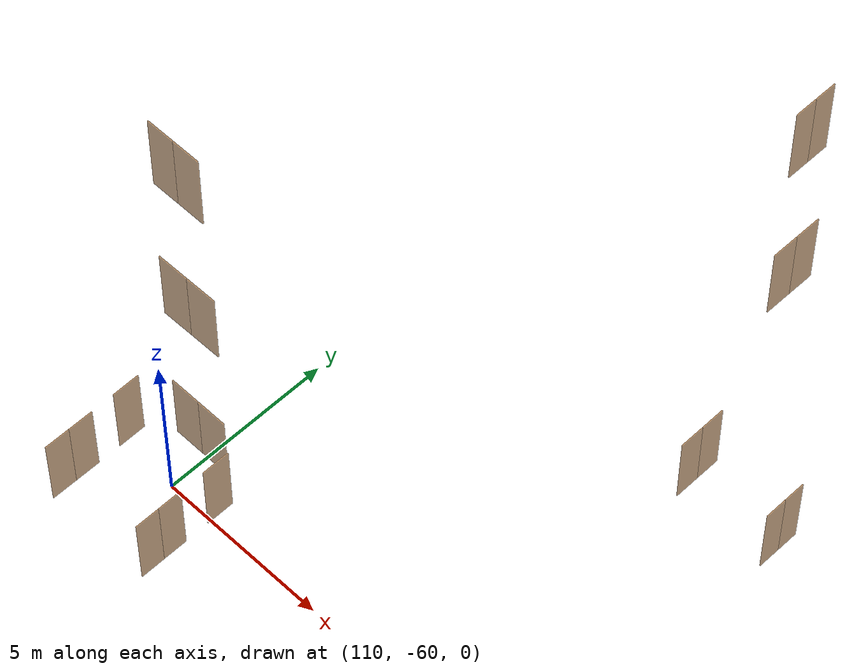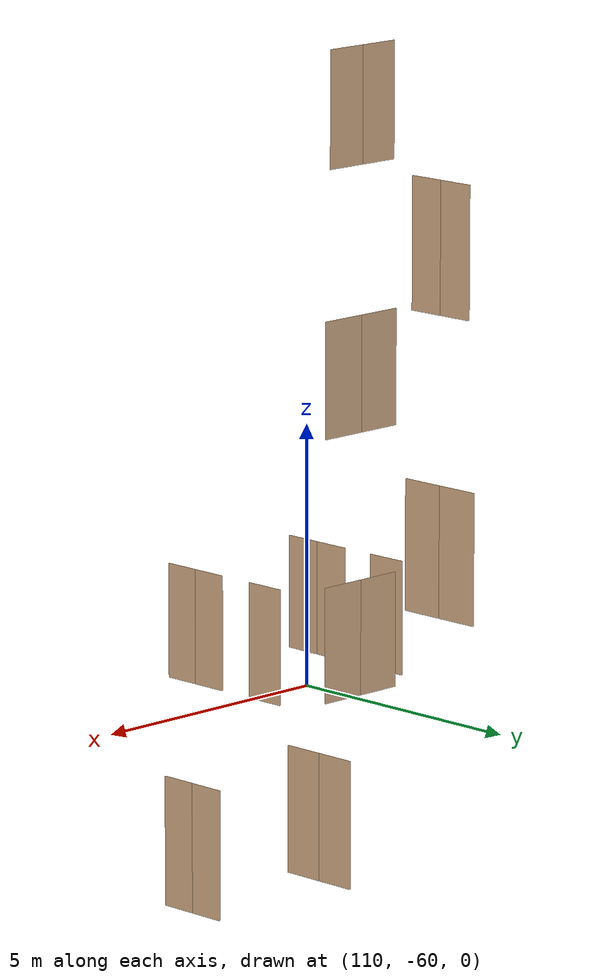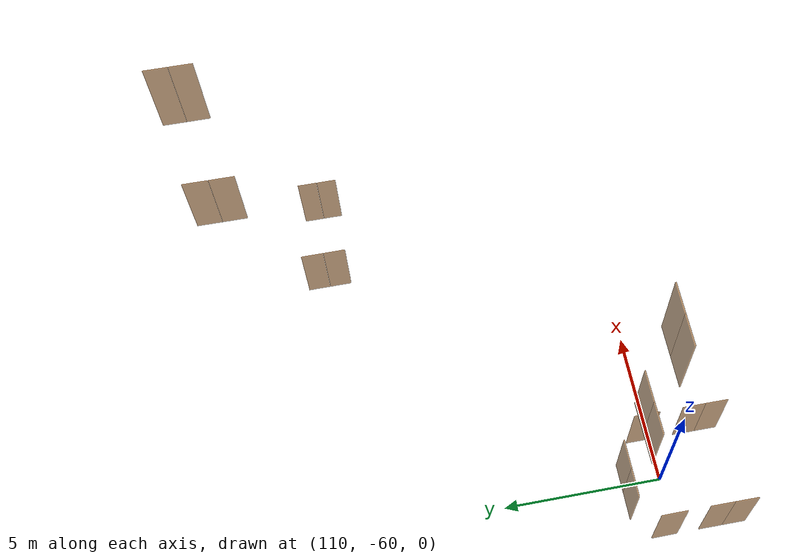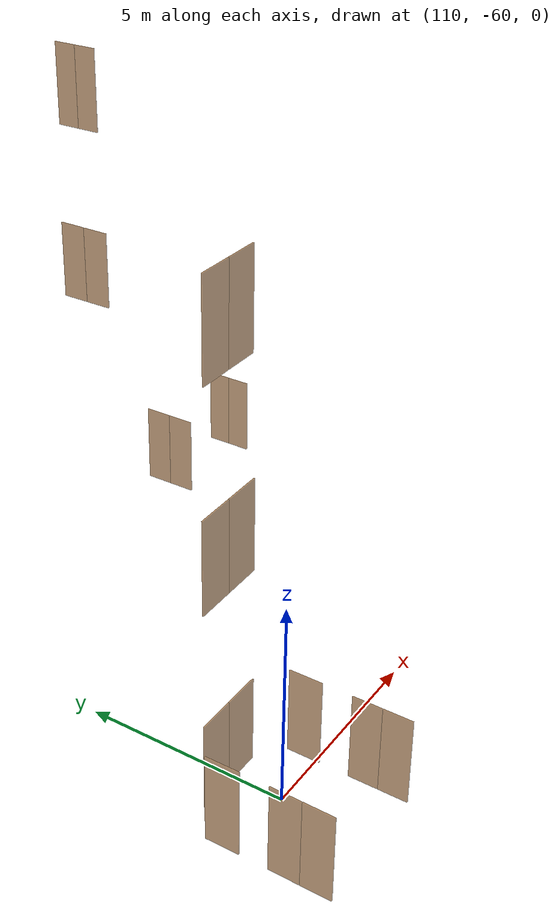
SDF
<sdf version="1.7">
 <world name="sim_world">
  <model name="p156">
   <pose>108.20558279754681 -61.52029939853638 0.0 0 0 -1.5757486219376704</pose>
   <link name="right">
    <pose>0.3735546237083344 0 1.11 0 0 0</pose>
    <visual name="right_visual">
     <geometry><box><size>0.7371092474166688 0.03 2.2</size></box></geometry>
     <material>
      <ambient>0.5 0.25 0 0.6</ambient>
      <diffuse>0.5 0.25 0 0.6</diffuse>
      <pbr><metal><metalness>0.0</metalness></metal></pbr>
     </material>
    </visual>
    <collision name="right_collision">
     <geometry><box><size>0.7371092474166688 0.03 2.2</size></box></geometry>
     <surface><contact><collide_bitmask>0x02</collide_bitmask></contact></surface>
    </collision>
    <inertial>
     <mass>50.0</mass>
     <inertia><ixx>20.17041666666667</ixx><iyy>22.43054184427987</iyy><izz>2.2676251776132</izz></inertia>
    </inertial>
   </link>
   <joint name="right_joint" type="revolute">
    <parent>world</parent>
    <child>right</child>
    <axis><xyz>0 0 -1</xyz><limit><lower>0</lower><upper>1.57</upper></limit></axis>
    <pose>0.3735546237083344 0 0 0 0 0</pose>
   </joint>
   <link name="left">
    <pose>-0.3735546237083344 0 1.11 0 0 0</pose>
    <visual name="left_visual">
     <geometry><box><size>0.7371092474166688 0.03 2.2</size></box></geometry>
     <material>
      <ambient>0.5 0.25 0 0.6</ambient>
      <diffuse>0.5 0.25 0 0.6</diffuse>
      <pbr><metal><metalness>0.0</metalness></metal></pbr>
     </material>
    </visual>
    <collision name="left_collision">
     <geometry><box><size>0.7371092474166688 0.03 2.2</size></box></geometry>
     <surface><contact><collide_bitmask>0x02</collide_bitmask></contact></surface>
    </collision>
    <inertial>
     <mass>50.0</mass>
     <inertia><ixx>20.17041666666667</ixx><iyy>22.43054184427987</iyy><izz>2.2676251776132</izz></inertia>
    </inertial>
   </link>
   <joint name="left_joint" type="revolute">
    <parent>world</parent>
    <child>left</child>
    <axis><xyz>0 0 -1</xyz><limit><lower>-1.57</lower><upper>0</upper></limit></axis>
    <pose>-0.3735546237083344 0 0 0 0 0</pose>
   </joint>
   <plugin name="register_component" filename="libregister_component.so">
    <component name="Door">
     <v_max_door>0.5</v_max_door>
     <a_max_door>0.3</a_max_door>
     <a_nom_door>0.15</a_nom_door>
     <dx_min_door>0.01</dx_min_door>
     <f_max_door>500.0</f_max_door>
     <ros_interface>true</ros_interface>
     <door name="p156" type="DoubleSwingDoor" left_joint_name="left_joint" right_joint_name="right_joint"/>
    </component>
   </plugin>
  </model>
  <model name="p157">
   <pose>111.40186587064095 -61.52849915558062 0.0 0 0 1.5697316602527767</pose>
   <link name="right">
    <pose>0.36003953622299495 0 1.11 0 0 0</pose>
    <visual name="right_visual">
     <geometry><box><size>0.7100790724459899 0.03 2.2</size></box></geometry>
     <material>
      <ambient>0.5 0.25 0 0.6</ambient>
      <diffuse>0.5 0.25 0 0.6</diffuse>
      <pbr><metal><metalness>0.0</metalness></metal></pbr>
     </material>
    </visual>
    <collision name="right_collision">
     <geometry><box><size>0.7100790724459899 0.03 2.2</size></box></geometry>
     <surface><contact><collide_bitmask>0x02</collide_bitmask></contact></surface>
    </collision>
    <inertial>
     <mass>50.0</mass>
     <inertia><ixx>20.17041666666667</ixx><iyy>22.26755120469066</iyy><izz>2.1046345380239893</izz></inertia>
    </inertial>
   </link>
   <joint name="right_joint" type="revolute">
    <parent>world</parent>
    <child>right</child>
    <axis><xyz>0 0 -1</xyz><limit><lower>0</lower><upper>1.57</upper></limit></axis>
    <pose>0.36003953622299495 0 0 0 0 0</pose>
   </joint>
   <link name="left">
    <pose>-0.36003953622299495 0 1.11 0 0 0</pose>
    <visual name="left_visual">
     <geometry><box><size>0.7100790724459899 0.03 2.2</size></box></geometry>
     <material>
      <ambient>0.5 0.25 0 0.6</ambient>
      <diffuse>0.5 0.25 0 0.6</diffuse>
      <pbr><metal><metalness>0.0</metalness></metal></pbr>
     </material>
    </visual>
    <collision name="left_collision">
     <geometry><box><size>0.7100790724459899 0.03 2.2</size></box></geometry>
     <surface><contact><collide_bitmask>0x02</collide_bitmask></contact></surface>
    </collision>
    <inertial>
     <mass>50.0</mass>
     <inertia><ixx>20.17041666666667</ixx><iyy>22.26755120469066</iyy><izz>2.1046345380239893</izz></inertia>
    </inertial>
   </link>
   <joint name="left_joint" type="revolute">
    <parent>world</parent>
    <child>left</child>
    <axis><xyz>0 0 -1</xyz><limit><lower>-1.57</lower><upper>0</upper></limit></axis>
    <pose>-0.36003953622299495 0 0 0 0 0</pose>
   </joint>
   <plugin name="register_component" filename="libregister_component.so">
    <component name="Door">
     <v_max_door>0.5</v_max_door>
     <a_max_door>0.3</a_max_door>
     <a_nom_door>0.15</a_nom_door>
     <dx_min_door>0.01</dx_min_door>
     <f_max_door>500.0</f_max_door>
     <ros_interface>true</ros_interface>
     <door name="p157" type="DoubleSwingDoor" left_joint_name="left_joint" right_joint_name="right_joint"/>
    </component>
   </plugin>
  </model>
  <model name="p158">
   <pose>111.4024991852094 -59.68242052087349 0.0 0 0 -1.5704728853895176</pose>
   <link name="right">
    <pose>0 0 1.11 0 0 0</pose>
    <visual name="right_visual">
     <geometry><box><size>0.814442281872725 0.03 2.2</size></box></geometry>
     <material>
      <ambient>0.5 0.25 0 0.6</ambient>
      <diffuse>0.5 0.25 0 0.6</diffuse>
      <pbr><metal><metalness>0.0</metalness></metal></pbr>
     </material>
    </visual>
    <collision name="right_collision">
     <geometry><box><size>0.814442281872725 0.03 2.2</size></box></geometry>
     <surface><contact><collide_bitmask>0x02</collide_bitmask></contact></surface>
    </collision>
    <inertial>
     <mass>50.0</mass>
     <inertia><ixx>20.17041666666667</ixx><iyy>22.930484293758553</iyy><izz>2.7675676270918808</izz></inertia>
    </inertial>
   </link>
   <joint name="right_joint" type="revolute">
    <parent>world</parent>
    <child>right</child>
    <axis><xyz>0 0 1</xyz><limit><lower>0</lower><upper>1.57</upper></limit></axis>
    <pose>0.41222114093636253 0 0 0 0 0</pose>
   </joint>
   <plugin name="register_component" filename="libregister_component.so">
    <component name="Door">
     <v_max_door>0.5</v_max_door>
     <a_max_door>0.3</a_max_door>
     <a_nom_door>0.15</a_nom_door>
     <dx_min_door>0.01</dx_min_door>
     <f_max_door>500.0</f_max_door>
     <ros_interface>true</ros_interface>
     <door name="p158" type="SwingDoor" left_joint_name="empty_joint" right_joint_name="right_joint"/>
    </component>
   </plugin>
  </model>
  <model name="p159">
   <pose>108.20648277088094 -59.67844286095231 0.0 0 0 -1.5640041614955043</pose>
   <link name="right">
    <pose>0 0 1.11 0 0 0</pose>
    <visual name="right_visual">
     <geometry><box><size>0.8144612563209438 0.03 2.2</size></box></geometry>
     <material>
      <ambient>0.5 0.25 0 0.6</ambient>
      <diffuse>0.5 0.25 0 0.6</diffuse>
      <pbr><metal><metalness>0.0</metalness></metal></pbr>
     </material>
    </visual>
    <collision name="right_collision">
     <geometry><box><size>0.8144612563209438 0.03 2.2</size></box></geometry>
     <surface><contact><collide_bitmask>0x02</collide_bitmask></contact></surface>
    </collision>
    <inertial>
     <mass>50.0</mass>
     <inertia><ixx>20.17041666666667</ixx><iyy>22.93061307519955</iyy><izz>2.767696408532876</izz></inertia>
    </inertial>
   </link>
   <joint name="right_joint" type="revolute">
    <parent>world</parent>
    <child>right</child>
    <axis><xyz>0 0 -1</xyz><limit><lower>0</lower><upper>1.57</upper></limit></axis>
    <pose>0.4122306281604719 0 0 0 0 0</pose>
   </joint>
   <plugin name="register_component" filename="libregister_component.so">
    <component name="Door">
     <v_max_door>0.5</v_max_door>
     <a_max_door>0.3</a_max_door>
     <a_nom_door>0.15</a_nom_door>
     <dx_min_door>0.01</dx_min_door>
     <f_max_door>500.0</f_max_door>
     <ros_interface>true</ros_interface>
     <door name="p159" type="SwingDoor" left_joint_name="empty_joint" right_joint_name="right_joint"/>
    </component>
   </plugin>
  </model>
  <model name="p160">
   <pose>109.81110189327731 -58.77832508666414 0.0 0 0 -0.0021304894530030185</pose>
   <link name="right">
    <pose>0.458931888035589 0 1.11 0 0 0</pose>
    <visual name="right_visual">
     <geometry><box><size>0.907863776071178 0.03 2.2</size></box></geometry>
     <material>
      <ambient>0.5 0.25 0 0.6</ambient>
      <diffuse>0.5 0.25 0 0.6</diffuse>
      <pbr><metal><metalness>0.0</metalness></metal></pbr>
     </material>
    </visual>
    <collision name="right_collision">
     <geometry><box><size>0.907863776071178 0.03 2.2</size></box></geometry>
     <surface><contact><collide_bitmask>0x02</collide_bitmask></contact></surface>
    </collision>
    <inertial>
     <mass>50.0</mass>
     <inertia><ixx>20.17041666666667</ixx><iyy>23.60090264959258</iyy><izz>3.4379859829259085</izz></inertia>
    </inertial>
   </link>
   <joint name="right_joint" type="revolute">
    <parent>world</parent>
    <child>right</child>
    <axis><xyz>0 0 -1</xyz><limit><lower>0</lower><upper>1.57</upper></limit></axis>
    <pose>0.458931888035589 0 0 0 0 0</pose>
   </joint>
   <link name="left">
    <pose>-0.458931888035589 0 1.11 0 0 0</pose>
    <visual name="left_visual">
     <geometry><box><size>0.907863776071178 0.03 2.2</size></box></geometry>
     <material>
      <ambient>0.5 0.25 0 0.6</ambient>
      <diffuse>0.5 0.25 0 0.6</diffuse>
      <pbr><metal><metalness>0.0</metalness></metal></pbr>
     </material>
    </visual>
    <collision name="left_collision">
     <geometry><box><size>0.907863776071178 0.03 2.2</size></box></geometry>
     <surface><contact><collide_bitmask>0x02</collide_bitmask></contact></surface>
    </collision>
    <inertial>
     <mass>50.0</mass>
     <inertia><ixx>20.17041666666667</ixx><iyy>23.60090264959258</iyy><izz>3.4379859829259085</izz></inertia>
    </inertial>
   </link>
   <joint name="left_joint" type="revolute">
    <parent>world</parent>
    <child>left</child>
    <axis><xyz>0 0 -1</xyz><limit><lower>-1.57</lower><upper>0</upper></limit></axis>
    <pose>-0.458931888035589 0 0 0 0 0</pose>
   </joint>
   <plugin name="register_component" filename="libregister_component.so">
    <component name="Door">
     <v_max_door>0.5</v_max_door>
     <a_max_door>0.3</a_max_door>
     <a_nom_door>0.15</a_nom_door>
     <dx_min_door>0.01</dx_min_door>
     <f_max_door>500.0</f_max_door>
     <ros_interface>true</ros_interface>
     <door name="p160" type="DoubleSwingDoor" left_joint_name="left_joint" right_joint_name="right_joint"/>
    </component>
   </plugin>
  </model>
  <model name="p165">
   <pose>118.92594293502424 -50.7183305679832 0.0 0 0 -1.5666387914813664</pose>
   <link name="right">
    <pose>0.36345348337243805 0 1.11 0 0 0</pose>
    <visual name="right_visual">
     <geometry><box><size>0.7169069667448761 0.03 2.2</size></box></geometry>
     <material>
      <ambient>0.5 0.25 0 0.6</ambient>
      <diffuse>0.5 0.25 0 0.6</diffuse>
      <pbr><metal><metalness>0.0</metalness></metal></pbr>
     </material>
    </visual>
    <collision name="right_collision">
     <geometry><box><size>0.7169069667448761 0.03 2.2</size></box></geometry>
     <surface><contact><collide_bitmask>0x02</collide_bitmask></contact></surface>
    </collision>
    <inertial>
     <mass>50.0</mass>
     <inertia><ixx>20.17041666666667</ixx><iyy>22.308148329030583</iyy><izz>2.145231662363912</izz></inertia>
    </inertial>
   </link>
   <joint name="right_joint" type="revolute">
    <parent>world</parent>
    <child>right</child>
    <axis><xyz>0 0 -1</xyz><limit><lower>0</lower><upper>1.57</upper></limit></axis>
    <pose>0.36345348337243805 0 0 0 0 0</pose>
   </joint>
   <link name="left">
    <pose>-0.36345348337243805 0 1.11 0 0 0</pose>
    <visual name="left_visual">
     <geometry><box><size>0.7169069667448761 0.03 2.2</size></box></geometry>
     <material>
      <ambient>0.5 0.25 0 0.6</ambient>
      <diffuse>0.5 0.25 0 0.6</diffuse>
      <pbr><metal><metalness>0.0</metalness></metal></pbr>
     </material>
    </visual>
    <collision name="left_collision">
     <geometry><box><size>0.7169069667448761 0.03 2.2</size></box></geometry>
     <surface><contact><collide_bitmask>0x02</collide_bitmask></contact></surface>
    </collision>
    <inertial>
     <mass>50.0</mass>
     <inertia><ixx>20.17041666666667</ixx><iyy>22.308148329030583</iyy><izz>2.145231662363912</izz></inertia>
    </inertial>
   </link>
   <joint name="left_joint" type="revolute">
    <parent>world</parent>
    <child>left</child>
    <axis><xyz>0 0 -1</xyz><limit><lower>-1.57</lower><upper>0</upper></limit></axis>
    <pose>-0.36345348337243805 0 0 0 0 0</pose>
   </joint>
   <plugin name="register_component" filename="libregister_component.so">
    <component name="Door">
     <v_max_door>0.5</v_max_door>
     <a_max_door>0.3</a_max_door>
     <a_nom_door>0.15</a_nom_door>
     <dx_min_door>0.01</dx_min_door>
     <f_max_door>500.0</f_max_door>
     <ros_interface>true</ros_interface>
     <door name="p165" type="DoubleSwingDoor" left_joint_name="left_joint" right_joint_name="right_joint"/>
    </component>
   </plugin>
  </model>
  <model name="p168">
   <pose>121.70563835145634 -50.86569286835949 0.0 0 0 1.5707963267948966</pose>
   <link name="right">
    <pose>0.320779384314541 0 1.11 0 0 0</pose>
    <visual name="right_visual">
     <geometry><box><size>0.631558768629082 0.03 2.2</size></box></geometry>
     <material>
      <ambient>0.5 0.25 0 0.6</ambient>
      <diffuse>0.5 0.25 0 0.6</diffuse>
      <pbr><metal><metalness>0.0</metalness></metal></pbr>
     </material>
    </visual>
    <collision name="right_collision">
     <geometry><box><size>0.631558768629082 0.03 2.2</size></box></geometry>
     <surface><contact><collide_bitmask>0x02</collide_bitmask></contact></surface>
    </collision>
    <inertial>
     <mass>50.0</mass>
     <inertia><ixx>20.17041666666667</ixx><iyy>21.828610325967848</iyy><izz>1.6656936593011766</izz></inertia>
    </inertial>
   </link>
   <joint name="right_joint" type="prismatic">
    <parent>world</parent>
    <child>right</child>
    <axis>
     <xyz>1 0 0</xyz>
     <limit><lower>0.0</lower><upper>0.641558768629082</upper><effort>500.0</effort></limit>
    </axis>
   </joint>
   <link name="left">
    <pose>-0.320779384314541 0 1.11 0 0 0</pose>
    <visual name="left_visual">
     <geometry><box><size>0.631558768629082 0.03 2.2</size></box></geometry>
     <material>
      <ambient>0.5 0.25 0 0.6</ambient>
      <diffuse>0.5 0.25 0 0.6</diffuse>
      <pbr><metal><metalness>0.0</metalness></metal></pbr>
     </material>
    </visual>
    <collision name="left_collision">
     <geometry><box><size>0.631558768629082 0.03 2.2</size></box></geometry>
     <surface><contact><collide_bitmask>0x02</collide_bitmask></contact></surface>
    </collision>
    <inertial>
     <mass>50.0</mass>
     <inertia><ixx>20.17041666666667</ixx><iyy>21.828610325967848</iyy><izz>1.6656936593011766</izz></inertia>
    </inertial>
   </link>
   <joint name="left_joint" type="prismatic">
    <parent>world</parent>
    <child>left</child>
    <axis>
     <xyz>1 0 0</xyz>
     <limit><lower>-0.641558768629082</lower><upper>0.0</upper><effort>500.0</effort></limit>
    </axis>
   </joint>
   <plugin name="register_component" filename="libregister_component.so">
    <component name="Door">
     <v_max_door>0.2</v_max_door>
     <a_max_door>0.2</a_max_door>
     <a_nom_door>0.08</a_nom_door>
     <dx_min_door>0.001</dx_min_door>
     <f_max_door>100.0</f_max_door>
     <ros_interface>true</ros_interface>
     <door name="p168" type="DoubleSlidingDoor" left_joint_name="left_joint" right_joint_name="right_joint"/>
    </component>
   </plugin>
  </model>
  <model name="puerta24">
   <pose>118.92321671127803 -47.9750358117094 5.0 0 0 -1.5746323386825745</pose>
   <link name="right">
    <pose>0.3830305936311917 0 1.11 0 0 0</pose>
    <visual name="right_visual">
     <geometry><box><size>0.7560611872623834 0.03 2.2</size></box></geometry>
     <material>
      <ambient>0.5 0.25 0 0.6</ambient>
      <diffuse>0.5 0.25 0 0.6</diffuse>
      <pbr><metal><metalness>0.0</metalness></metal></pbr>
     </material>
    </visual>
    <collision name="right_collision">
     <geometry><box><size>0.7560611872623834 0.03 2.2</size></box></geometry>
     <surface><contact><collide_bitmask>0x02</collide_bitmask></contact></surface>
    </collision>
    <inertial>
     <mass>50.0</mass>
     <inertia><ixx>20.17041666666667</ixx><iyy>22.548452162019192</iyy><izz>2.38553549535252</izz></inertia>
    </inertial>
   </link>
   <joint name="right_joint" type="revolute">
    <parent>world</parent>
    <child>right</child>
    <axis><xyz>0 0 -1</xyz><limit><lower>0</lower><upper>1.57</upper></limit></axis>
    <pose>0.3830305936311917 0 0 0 0 0</pose>
   </joint>
   <link name="left">
    <pose>-0.3830305936311917 0 1.11 0 0 0</pose>
    <visual name="left_visual">
     <geometry><box><size>0.7560611872623834 0.03 2.2</size></box></geometry>
     <material>
      <ambient>0.5 0.25 0 0.6</ambient>
      <diffuse>0.5 0.25 0 0.6</diffuse>
      <pbr><metal><metalness>0.0</metalness></metal></pbr>
     </material>
    </visual>
    <collision name="left_collision">
     <geometry><box><size>0.7560611872623834 0.03 2.2</size></box></geometry>
     <surface><contact><collide_bitmask>0x02</collide_bitmask></contact></surface>
    </collision>
    <inertial>
     <mass>50.0</mass>
     <inertia><ixx>20.17041666666667</ixx><iyy>22.548452162019192</iyy><izz>2.38553549535252</izz></inertia>
    </inertial>
   </link>
   <joint name="left_joint" type="revolute">
    <parent>world</parent>
    <child>left</child>
    <axis><xyz>0 0 -1</xyz><limit><lower>-1.57</lower><upper>0</upper></limit></axis>
    <pose>-0.3830305936311917 0 0 0 0 0</pose>
   </joint>
   <plugin name="register_component" filename="libregister_component.so">
    <component name="Door">
     <v_max_door>0.5</v_max_door>
     <a_max_door>0.3</a_max_door>
     <a_nom_door>0.15</a_nom_door>
     <dx_min_door>0.01</dx_min_door>
     <f_max_door>500.0</f_max_door>
     <ros_interface>true</ros_interface>
     <door name="puerta24" type="DoubleSwingDoor" left_joint_name="left_joint" right_joint_name="right_joint"/>
    </component>
   </plugin>
  </model>
  <model name="puerta25">
   <pose>109.81199363060342 -58.77026430609419 5.0 0 0 -3.1328847509011695</pose>
   <link name="right">
    <pose>0.46047998920564187 0 1.11 0 0 0</pose>
    <visual name="right_visual">
     <geometry><box><size>0.9109599784112837 0.03 2.2</size></box></geometry>
     <material>
      <ambient>0.5 0.25 0 0.6</ambient>
      <diffuse>0.5 0.25 0 0.6</diffuse>
      <pbr><metal><metalness>0.0</metalness></metal></pbr>
     </material>
    </visual>
    <collision name="right_collision">
     <geometry><box><size>0.9109599784112837 0.03 2.2</size></box></geometry>
     <surface><contact><collide_bitmask>0x02</collide_bitmask></contact></surface>
    </collision>
    <inertial>
     <mass>50.0</mass>
     <inertia><ixx>20.17041666666667</ixx><iyy>23.6243670094462</iyy><izz>3.4614503427795276</izz></inertia>
    </inertial>
   </link>
   <joint name="right_joint" type="revolute">
    <parent>world</parent>
    <child>right</child>
    <axis><xyz>0 0 1</xyz><limit><lower>0</lower><upper>1.57</upper></limit></axis>
    <pose>0.46047998920564187 0 0 0 0 0</pose>
   </joint>
   <link name="left">
    <pose>-0.46047998920564187 0 1.11 0 0 0</pose>
    <visual name="left_visual">
     <geometry><box><size>0.9109599784112837 0.03 2.2</size></box></geometry>
     <material>
      <ambient>0.5 0.25 0 0.6</ambient>
      <diffuse>0.5 0.25 0 0.6</diffuse>
      <pbr><metal><metalness>0.0</metalness></metal></pbr>
     </material>
    </visual>
    <collision name="left_collision">
     <geometry><box><size>0.9109599784112837 0.03 2.2</size></box></geometry>
     <surface><contact><collide_bitmask>0x02</collide_bitmask></contact></surface>
    </collision>
    <inertial>
     <mass>50.0</mass>
     <inertia><ixx>20.17041666666667</ixx><iyy>23.6243670094462</iyy><izz>3.4614503427795276</izz></inertia>
    </inertial>
   </link>
   <joint name="left_joint" type="revolute">
    <parent>world</parent>
    <child>left</child>
    <axis><xyz>0 0 1</xyz><limit><lower>-1.57</lower><upper>0</upper></limit></axis>
    <pose>-0.46047998920564187 0 0 0 0 0</pose>
   </joint>
   <plugin name="register_component" filename="libregister_component.so">
    <component name="Door">
     <v_max_door>0.5</v_max_door>
     <a_max_door>0.3</a_max_door>
     <a_nom_door>0.15</a_nom_door>
     <dx_min_door>0.01</dx_min_door>
     <f_max_door>500.0</f_max_door>
     <ros_interface>true</ros_interface>
     <door name="puerta25" type="DoubleSwingDoor" left_joint_name="left_joint" right_joint_name="right_joint"/>
    </component>
   </plugin>
  </model>
  <model name="puerta112">
   <pose>109.78884412608137 -58.76935828899738 10.0 0 0 3.1383383140968375</pose>
   <link name="right">
    <pose>0.4090817776490359 0 1.11 0 0 0</pose>
    <visual name="right_visual">
     <geometry><box><size>0.8081635552980718 0.03 2.2</size></box></geometry>
     <material>
      <ambient>0.5 0.25 0 0.6</ambient>
      <diffuse>0.5 0.25 0 0.6</diffuse>
      <pbr><metal><metalness>0.0</metalness></metal></pbr>
     </material>
    </visual>
    <collision name="right_collision">
     <geometry><box><size>0.8081635552980718 0.03 2.2</size></box></geometry>
     <surface><contact><collide_bitmask>0x02</collide_bitmask></contact></surface>
    </collision>
    <inertial>
     <mass>50.0</mass>
     <inertia><ixx>20.17041666666667</ixx><iyy>22.88803471713342</iyy><izz>2.7251180504667487</izz></inertia>
    </inertial>
   </link>
   <joint name="right_joint" type="revolute">
    <parent>world</parent>
    <child>right</child>
    <axis><xyz>0 0 1</xyz><limit><lower>0</lower><upper>1.57</upper></limit></axis>
    <pose>0.4090817776490359 0 0 0 0 0</pose>
   </joint>
   <link name="left">
    <pose>-0.4090817776490359 0 1.11 0 0 0</pose>
    <visual name="left_visual">
     <geometry><box><size>0.8081635552980718 0.03 2.2</size></box></geometry>
     <material>
      <ambient>0.5 0.25 0 0.6</ambient>
      <diffuse>0.5 0.25 0 0.6</diffuse>
      <pbr><metal><metalness>0.0</metalness></metal></pbr>
     </material>
    </visual>
    <collision name="left_collision">
     <geometry><box><size>0.8081635552980718 0.03 2.2</size></box></geometry>
     <surface><contact><collide_bitmask>0x02</collide_bitmask></contact></surface>
    </collision>
    <inertial>
     <mass>50.0</mass>
     <inertia><ixx>20.17041666666667</ixx><iyy>22.88803471713342</iyy><izz>2.7251180504667487</izz></inertia>
    </inertial>
   </link>
   <joint name="left_joint" type="revolute">
    <parent>world</parent>
    <child>left</child>
    <axis><xyz>0 0 1</xyz><limit><lower>-1.57</lower><upper>0</upper></limit></axis>
    <pose>-0.4090817776490359 0 0 0 0 0</pose>
   </joint>
   <plugin name="register_component" filename="libregister_component.so">
    <component name="Door">
     <v_max_door>0.5</v_max_door>
     <a_max_door>0.3</a_max_door>
     <a_nom_door>0.15</a_nom_door>
     <dx_min_door>0.01</dx_min_door>
     <f_max_door>500.0</f_max_door>
     <ros_interface>true</ros_interface>
     <door name="puerta112" type="DoubleSwingDoor" left_joint_name="left_joint" right_joint_name="right_joint"/>
    </component>
   </plugin>
  </model>
  <model name="puerta187">
   <pose>118.91100303336216 -47.987799027371395 10.0 0 0 1.5721125150980422</pose>
   <link name="right">
    <pose>0.31574132465959337 0 1.11 0 0 0</pose>
    <visual name="right_visual">
     <geometry><box><size>0.6214826493191867 0.03 2.2</size></box></geometry>
     <material>
      <ambient>0.5 0.25 0 0.6</ambient>
      <diffuse>0.5 0.25 0 0.6</diffuse>
      <pbr><metal><metalness>0.0</metalness></metal></pbr>
     </material>
    </visual>
    <collision name="right_collision">
     <geometry><box><size>0.6214826493191867 0.03 2.2</size></box></geometry>
     <surface><contact><collide_bitmask>0x02</collide_bitmask></contact></surface>
    </collision>
    <inertial>
     <mass>50.0</mass>
     <inertia><ixx>20.17041666666667</ixx><iyy>21.776002847519983</iyy><izz>1.6130861808533137</izz></inertia>
    </inertial>
   </link>
   <joint name="right_joint" type="revolute">
    <parent>world</parent>
    <child>right</child>
    <axis><xyz>0 0 1</xyz><limit><lower>0</lower><upper>1.57</upper></limit></axis>
    <pose>0.31574132465959337 0 0 0 0 0</pose>
   </joint>
   <link name="left">
    <pose>-0.31574132465959337 0 1.11 0 0 0</pose>
    <visual name="left_visual">
     <geometry><box><size>0.6214826493191867 0.03 2.2</size></box></geometry>
     <material>
      <ambient>0.5 0.25 0 0.6</ambient>
      <diffuse>0.5 0.25 0 0.6</diffuse>
      <pbr><metal><metalness>0.0</metalness></metal></pbr>
     </material>
    </visual>
    <collision name="left_collision">
     <geometry><box><size>0.6214826493191867 0.03 2.2</size></box></geometry>
     <surface><contact><collide_bitmask>0x02</collide_bitmask></contact></surface>
    </collision>
    <inertial>
     <mass>50.0</mass>
     <inertia><ixx>20.17041666666667</ixx><iyy>21.776002847519983</iyy><izz>1.6130861808533137</izz></inertia>
    </inertial>
   </link>
   <joint name="left_joint" type="revolute">
    <parent>world</parent>
    <child>left</child>
    <axis><xyz>0 0 1</xyz><limit><lower>-1.57</lower><upper>0</upper></limit></axis>
    <pose>-0.31574132465959337 0 0 0 0 0</pose>
   </joint>
   <plugin name="register_component" filename="libregister_component.so">
    <component name="Door">
     <v_max_door>0.5</v_max_door>
     <a_max_door>0.3</a_max_door>
     <a_nom_door>0.15</a_nom_door>
     <dx_min_door>0.01</dx_min_door>
     <f_max_door>500.0</f_max_door>
     <ros_interface>true</ros_interface>
     <door name="puerta187" type="DoubleSwingDoor" left_joint_name="left_joint" right_joint_name="right_joint"/>
    </component>
   </plugin>
  </model>
 </world>
</sdf>
